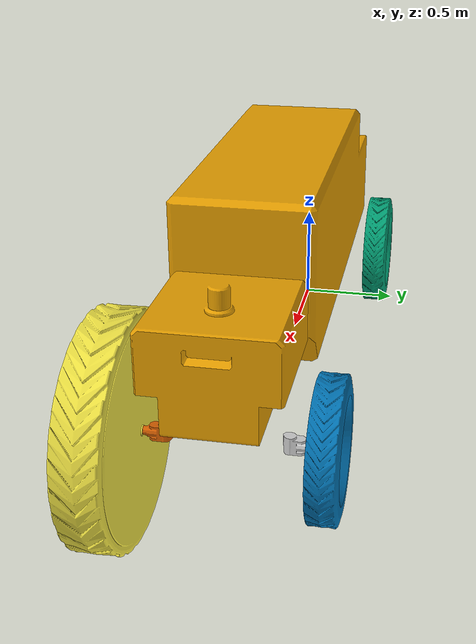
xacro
<?xml version="1.0" ?>
<robot xmlns:xacro="http://www.ros.org/wiki/xacro">
  <xacro:property name="wheel_width" value="0.132" />
  <xacro:property name="front_axis_X" value="2.2" />
  <xacro:property name="wheel_base_rear" value="0.35" />
  <xacro:property name="wheel_base_front" value="0.225" />

  <xacro:property name="wheel_radius" value="0.3" />
  <xacro:property name="manip_x" value="0.6" />
  <xacro:property name="manip_y" value="0.2" />
  <xacro:property name="manip_z" value="0.0" />

    <link name="base_link">
      <inertial>
        <origin rpy="0.000000 -0.000000 -1.570796" xyz="1.003638 0.000000 0.000000"/>
        <!-- TODO: Update mass as volume from Meshlab will overestimate the mass -->
        <mass value="300"/>
        <inertia ixx="50.0" ixy="0.0" ixz="0.0" iyy="240.0" iyz="0.0" izz="250.0"/>
      </inertial>
      <visual>
        <origin rpy="0.000000 -0.000000 -1.570796" xyz="1.101831 0.000000 0.000000"/>
        <geometry>
          <mesh filename="meshes/VehicleBody/VehicleBody.dae" scale="1 1 1"/>
        </geometry>
      </visual>
      <collision>
        <origin rpy="1.570796 -0.000000 1.570796" xyz="0.002268 -0.000000 0.668965"/>
        <geometry>
           <box size="0.592215 0.491737 0.491032"/>
         </geometry>
       </collision>
       <collision>
        <origin rpy="-1.570796 -0.000000 -3.141593" xyz="0.963687 -0.000000 0.804149"/>
        <geometry>
           <box size="1.427517 0.762107 0.592215"/>
         </geometry>
       </collision>
       <collision>
        <origin rpy="0.000000 -0.000000 0.000000" xyz="2.197615 0.000000 0.762109"/>
        <geometry>
           <box size="0.583352 0.544691 0.264003"/>
         </geometry>
       </collision>
       <collision>
        <origin rpy="-1.570796 -0.000000 -3.141593" xyz="2.083368 0.000000 0.526601"/>
        <geometry>
           <box size="0.811846 0.207011 0.097965"/>
         </geometry>
       </collision>
       <collision>
        <origin rpy="1.570796 -0.000000 1.570796" xyz="-0.288170 -0.000000 0.522611"/>
        <geometry>
           <box size="0.592215 0.236236 0.089846"/>
         </geometry>
       </collision>
       <collision>
        <origin rpy="1.570796 -0.000000 1.570796" xyz="2.5402429 0.000000 0.562592"/>
        <geometry>
           <box size="0.437199 0.131902 0.055878"/>
         </geometry>
       </collision>
       <collision>
        <origin rpy="1.570796 -0.000000 1.570796" xyz="1.791692 -0.000000 0.907655"/>
        <geometry>
           <box size="0.592215 0.555096 0.228493"/>
         </geometry>
       </collision>

    </link>

    <link name="wheel_rear_right_link">
      <inertial>
        <origin rpy="0 0 0" xyz="0 0.0 0.0"/>
        <mass value="24.5"/>
        <inertia ixx="0.787" ixy="0.0" ixz="0.0" iyy="0.787" iyz="0.0" izz="1.309"/>
      </inertial>

      <visual>
        <origin rpy="0 1.571 0" xyz="0 0 0"/>
        <geometry>
          <mesh filename="meshes/Wheels/WheelRight.dae" scale="1 1 1"/>
        </geometry>
      </visual>

      <collision>
        <origin rpy="0 0 0" xyz="0 0 ${-wheel_width/2}"/>
        <geometry>
          <cylinder radius="${wheel_radius}" length="${wheel_width}" />
        </geometry>
      </collision>
    </link>

    <link name="wheel_rear_left_link">
      <inertial>
        <origin rpy="0 0 0" xyz="0 0.0 ${wheel_width}"/>
        <mass value="24.5"/>
        <inertia ixx="0.787" ixy="0.0" ixz="0.0" iyy="0.787" iyz="0.0" izz="1.309"/>
      </inertial>

      <visual>
        <origin rpy="0 1.571 0 " xyz="0 0 0.0"/>
        <geometry>
          <mesh filename="meshes/Wheels/WheelLeft.dae" scale="1 1 1"/>
        </geometry>
      </visual>

      <collision>
        <origin rpy="0 0 0" xyz="0 0 ${wheel_width/2}"/>
        <geometry>
          <cylinder radius="${wheel_radius}" length="${wheel_width}" />
        </geometry>
      </collision>
    </link>

    <link name="wheel_front_right_link">
      <inertial>
        <origin rpy="0 0 0" xyz="0 0.0 ${wheel_width/2}"/>
        <mass value="24.5"/>
        <inertia ixx="0.787" ixy="0.0" ixz="0.0" iyy="0.787" iyz="0.0" izz="1.309"/>
      </inertial>

      <visual>
        <origin rpy="0 1.571 0" xyz="0 0 0"/>
        <geometry>
          <mesh filename="meshes/Wheels/WheelRight.dae" scale="1 1 1"/>
        </geometry>
      </visual>

      <collision>
        <origin rpy="0 0 0" xyz="0 0 ${-wheel_width/2}"/>
        <geometry>
          <cylinder radius="${wheel_radius}" length="${wheel_width}" />
        </geometry>
      </collision>
    </link>

    <link name="wheel_front_left_link">
      <inertial>
        <origin rpy="0 0 0" xyz="0 0.0 ${wheel_width/2}"/>
        <mass value="24.5"/>
        <inertia ixx="0.787" ixy="0.0" ixz="0.0" iyy="0.787" iyz="0.0" izz="1.309"/>
      </inertial>

      <visual>
        <origin rpy="0 1.571 0" xyz="0 0 0"/>
        <geometry>
          <mesh filename="meshes/Wheels/WheelLeft.dae" scale="1 1 1"/>
        </geometry>
      </visual>

      <collision>
        <origin rpy="0 0 0" xyz="0 0 ${wheel_width/2}"/>
        <geometry>
          <cylinder radius="${wheel_radius}" length="${wheel_width}" />
        </geometry>
      </collision>
    </link>

    <link name="steering_front_right_link">
      <inertial>
        <origin rpy="0 0 -1.571" xyz="0 0 -0.04"/>
        <mass value="20.0"/>
        <inertia ixx="1" ixy="0.0" ixz="0.0" iyy="1" iyz="0.0" izz="1"/>
      </inertial>

      <visual>
        <origin rpy="0 0 -1.571" xyz="0 -0.03 -0.03"/>
        <geometry>
          <mesh filename="meshes/Steering/SteeringArmRight.dae" scale="0.6 0.6 0.6"/>
        </geometry>
      </visual>
    </link>

    <link name="steering_front_left_link">
      <inertial>
        <origin rpy="0 0 -1.571" xyz="0 0 -0.04"/>
        <mass value="20.0"/>
        <inertia ixx="1" ixy="0.0" ixz="0.0" iyy="1" iyz="0.0" izz="1"/>
      </inertial>
      <visual>
        <origin rpy="0 0 -1.571" xyz="0 0.03 -0.03"/>
        <geometry>
          <mesh filename="meshes/Steering/SteeringArmLeft.dae" scale="0.6 0.6 0.6"/>
        </geometry>
      </visual>
    </link>

    <link name="lidar_mount">
      <inertial>
        <origin rpy="0 0 0" xyz="0 0 0"/>
        <mass value="1.0"/>
        <inertia ixx="0.1" ixy="0.0" ixz="0.0" iyy="0.1" iyz="0.0" izz="0.1"/>
      </inertial>
    </link>

    <joint name="wheel_rear_right_joint" type="continuous">
      <origin rpy="-1.570796 0.000000 0.000000" xyz="0.000000 ${-wheel_base_rear} ${wheel_radius}"/>
      <parent link="base_link"/>
      <child link="wheel_rear_right_link"/>
      <axis xyz="0.0 0.0 1.0"/>
      <limit effort="1000000.0" velocity="1000.0"/>
    </joint>

    <joint name="wheel_rear_left_joint" type="continuous">
      <origin rpy="-1.570796 -0.000000 0.000000" xyz="0.000000 ${wheel_base_rear} ${wheel_radius}"/>
      <parent link="base_link"/>
      <child link="wheel_rear_left_link"/>
      <axis xyz="0.0 0.0 1.0"/>
      <limit effort="1000000.0" velocity="1000.0"/>
    </joint>

    <joint name="wheel_front_right_joint" type="continuous">
      <origin rpy="-1.571 0 0" xyz="0 ${wheel_base_front-wheel_base_rear} 0"/>
      <parent link="steering_front_right_link"/>
      <child link="wheel_front_right_link"/>
      <axis xyz="0.0 0.0 1.0"/>
      <limit effort="1000000.0" velocity="1000.0"/>
    </joint>

    <joint name="wheel_front_left_joint" type="continuous">
      <origin rpy="-1.571 0 0" xyz="0 ${-wheel_base_front+wheel_base_rear} 0"/>
      <parent link="steering_front_left_link"/>
      <child link="wheel_front_left_link"/>
      <axis xyz="0.0 0.0 1.0"/>
      <limit effort="1000000.0" velocity="1000.0"/>
    </joint>

    <joint name="steering_front_right_joint" type="revolute">
      <origin rpy="0 0 0" xyz="${front_axis_X} ${-wheel_base_front} ${wheel_radius}"/>
      <parent link="base_link"/>
      <child link="steering_front_right_link"/>
      <axis xyz="0.0 0.0 1.0"/>
      <dynamics damping="2.0" friction="1.0"/>
      <limit effort="1000000.0" lower="-0.5235" upper="0.5235" velocity="100"/>
    </joint>

    <joint name="steering_front_left_joint" type="revolute">
      <origin rpy="0 0 0" xyz="${front_axis_X} ${wheel_base_front} ${wheel_radius}"/>
      <parent link="base_link"/>
      <child link="steering_front_left_link"/>
      <axis xyz="0.0 0.0 1.0"/>
      <dynamics damping="2.0" friction="1.0"/>
      <limit effort="1000000.0" lower="-0.5235" upper="0.5235" velocity="100"/>
    </joint>

    <joint name="lidar_mount_joint" type="fixed">
      <origin rpy="0 0 0" xyz="2.2804451 0.0 0.8967377"/>
      <parent link="base_link"/>
      <child link="lidar_mount"/>
    </joint>

</robot>
